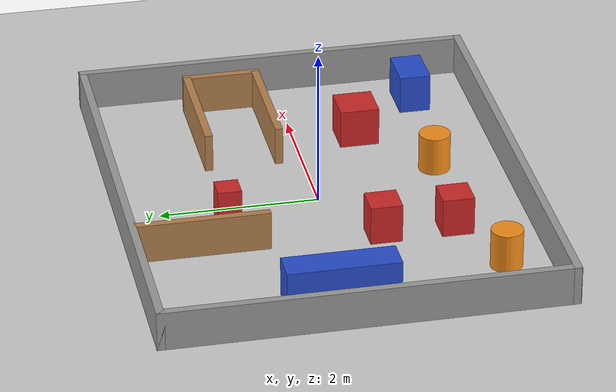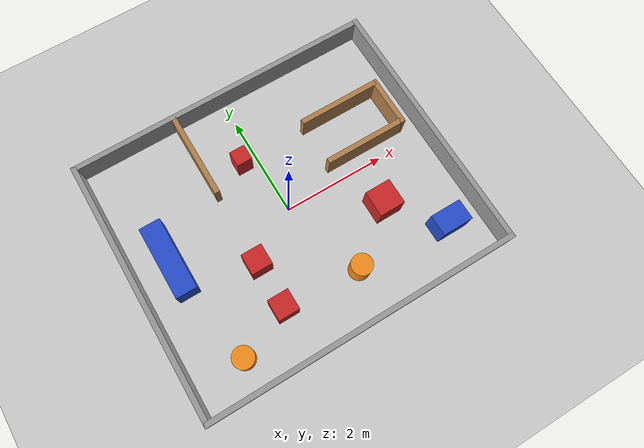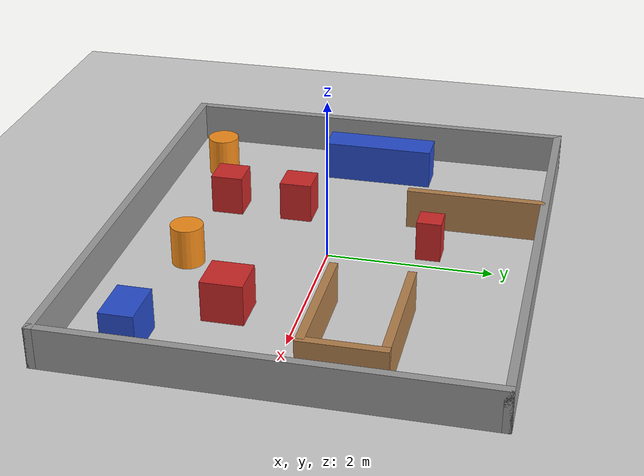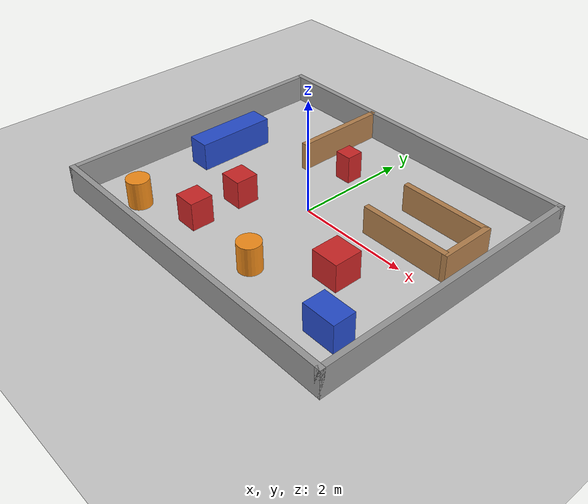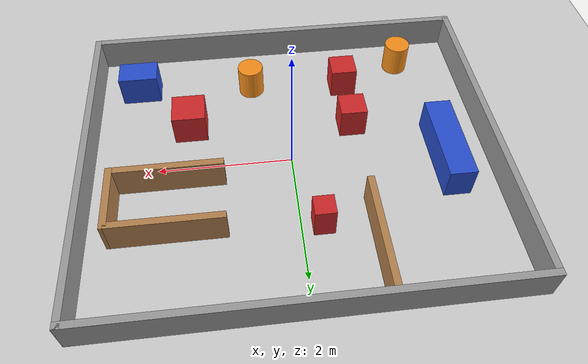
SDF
<?xml version="1.0" ?>
<sdf version="1.6">
  <world name="maze">
    <include><uri>model://sun</uri></include>
    <include><uri>model://ground_plane</uri></include>

    <model name="wall_north"><static>true</static><pose>0 2.5 0.25 0 0 0</pose>
      <link name="link">
        <collision name="c"><geometry><box><size>6.1 0.1 0.5</size></box></geometry></collision>
        <visual name="v"><geometry><box><size>6.1 0.1 0.5</size></box></geometry><material><script><uri>file://media/materials/scripts/gazebo.material</uri><name>Gazebo/Grey</name></script></material></visual>
      </link>
    </model>
    <model name="wall_south"><static>true</static><pose>0 -2.5 0.25 0 0 0</pose>
      <link name="link">
        <collision name="c"><geometry><box><size>6.1 0.1 0.5</size></box></geometry></collision>
        <visual name="v"><geometry><box><size>6.1 0.1 0.5</size></box></geometry><material><script><uri>file://media/materials/scripts/gazebo.material</uri><name>Gazebo/Grey</name></script></material></visual>
      </link>
    </model>
    <model name="wall_east"><static>true</static><pose>3 0 0.25 0 0 0</pose>
      <link name="link">
        <collision name="c"><geometry><box><size>0.1 5.1 0.5</size></box></geometry></collision>
        <visual name="v"><geometry><box><size>0.1 5.1 0.5</size></box></geometry><material><script><uri>file://media/materials/scripts/gazebo.material</uri><name>Gazebo/Grey</name></script></material></visual>
      </link>
    </model>
    <model name="wall_west"><static>true</static><pose>-3 0 0.25 0 0 0</pose>
      <link name="link">
        <collision name="c"><geometry><box><size>0.1 5.1 0.5</size></box></geometry></collision>
        <visual name="v"><geometry><box><size>0.1 5.1 0.5</size></box></geometry><material><script><uri>file://media/materials/scripts/gazebo.material</uri><name>Gazebo/Grey</name></script></material></visual>
      </link>
    </model>
    <model name="partition"><static>true</static><pose>-1.0 1.65 0.25 0 0 0</pose>
      <link name="link">
        <collision name="c"><geometry><box><size>0.1 1.7 0.5</size></box></geometry></collision>
        <visual name="v"><geometry><box><size>0.1 1.7 0.5</size></box></geometry><material><script><uri>file://media/materials/scripts/gazebo.material</uri><name>Gazebo/Wood</name></script></material></visual>
      </link>
    </model>
    <model name="pocket_top"><static>true</static><pose>1.8 1.2 0.25 0 0 0</pose>
      <link name="link">
        <collision name="c"><geometry><box><size>1.6 0.1 0.5</size></box></geometry></collision>
        <visual name="v"><geometry><box><size>1.6 0.1 0.5</size></box></geometry><material><script><uri>file://media/materials/scripts/gazebo.material</uri><name>Gazebo/Wood</name></script></material></visual>
      </link>
    </model>
    <model name="pocket_bottom"><static>true</static><pose>1.8 0.3 0.25 0 0 0</pose>
      <link name="link">
        <collision name="c"><geometry><box><size>1.6 0.1 0.5</size></box></geometry></collision>
        <visual name="v"><geometry><box><size>1.6 0.1 0.5</size></box></geometry><material><script><uri>file://media/materials/scripts/gazebo.material</uri><name>Gazebo/Wood</name></script></material></visual>
      </link>
    </model>
    <model name="pocket_back"><static>true</static><pose>2.6 0.75 0.25 0 0 0</pose>
      <link name="link">
        <collision name="c"><geometry><box><size>0.1 1.0 0.5</size></box></geometry></collision>
        <visual name="v"><geometry><box><size>0.1 1.0 0.5</size></box></geometry><material><script><uri>file://media/materials/scripts/gazebo.material</uri><name>Gazebo/Wood</name></script></material></visual>
      </link>
    </model>
    <model name="gate_box_1"><static>true</static><pose>-1.0 -0.6 0.25 0 0 0</pose>
      <link name="link">
        <collision name="c"><geometry><box><size>0.4 0.4 0.5</size></box></geometry></collision>
        <visual name="v"><geometry><box><size>0.4 0.4 0.5</size></box></geometry><material><script><uri>file://media/materials/scripts/gazebo.material</uri><name>Gazebo/Red</name></script></material></visual>
      </link>
    </model>
    <model name="gate_box_2"><static>true</static><pose>-1.0 -1.5 0.25 0 0 0</pose>
      <link name="link">
        <collision name="c"><geometry><box><size>0.4 0.4 0.5</size></box></geometry></collision>
        <visual name="v"><geometry><box><size>0.4 0.4 0.5</size></box></geometry><material><script><uri>file://media/materials/scripts/gazebo.material</uri><name>Gazebo/Red</name></script></material></visual>
      </link>
    </model>
    <model name="corridor_box"><static>true</static><pose>-2.3 0.2 0.25 0 0 0</pose>
      <link name="link">
        <collision name="c"><geometry><box><size>0.4 1.4 0.5</size></box></geometry></collision>
        <visual name="v"><geometry><box><size>0.4 1.4 0.5</size></box></geometry><material><script><uri>file://media/materials/scripts/gazebo.material</uri><name>Gazebo/Blue</name></script></material></visual>
      </link>
    </model>
    <model name="box_a"><static>true</static><pose>-0.3 1.2 0.25 0 0 0</pose>
      <link name="link">
        <collision name="c"><geometry><box><size>0.3 0.3 0.5</size></box></geometry></collision>
        <visual name="v"><geometry><box><size>0.3 0.3 0.5</size></box></geometry><material><script><uri>file://media/materials/scripts/gazebo.material</uri><name>Gazebo/Red</name></script></material></visual>
      </link>
    </model>
    <model name="box_b"><static>true</static><pose>1.5 -0.8 0.25 0 0 0</pose>
      <link name="link">
        <collision name="c"><geometry><box><size>0.5 0.5 0.5</size></box></geometry></collision>
        <visual name="v"><geometry><box><size>0.5 0.5 0.5</size></box></geometry><material><script><uri>file://media/materials/scripts/gazebo.material</uri><name>Gazebo/Red</name></script></material></visual>
      </link>
    </model>
    <model name="box_c"><static>true</static><pose>2.3 -1.7 0.25 0 0 0</pose>
      <link name="link">
        <collision name="c"><geometry><box><size>0.6 0.4 0.5</size></box></geometry></collision>
        <visual name="v"><geometry><box><size>0.6 0.4 0.5</size></box></geometry><material><script><uri>file://media/materials/scripts/gazebo.material</uri><name>Gazebo/Blue</name></script></material></visual>
      </link>
    </model>
    <model name="pillar_1"><static>true</static><pose>0.5 -1.6 0.25 0 0 0</pose>
      <link name="link">
        <collision name="c"><geometry><cylinder><radius>0.2</radius><length>0.5</length></cylinder></geometry></collision>
        <visual name="v"><geometry><cylinder><radius>0.2</radius><length>0.5</length></cylinder></geometry><material><script><uri>file://media/materials/scripts/gazebo.material</uri><name>Gazebo/Orange</name></script></material></visual>
      </link>
    </model>
    <model name="pillar_2"><static>true</static><pose>-2.0 -1.9 0.25 0 0 0</pose>
      <link name="link">
        <collision name="c"><geometry><cylinder><radius>0.2</radius><length>0.5</length></cylinder></geometry></collision>
        <visual name="v"><geometry><cylinder><radius>0.2</radius><length>0.5</length></cylinder></geometry><material><script><uri>file://media/materials/scripts/gazebo.material</uri><name>Gazebo/Orange</name></script></material></visual>
      </link>
    </model>
  </world>
</sdf>
